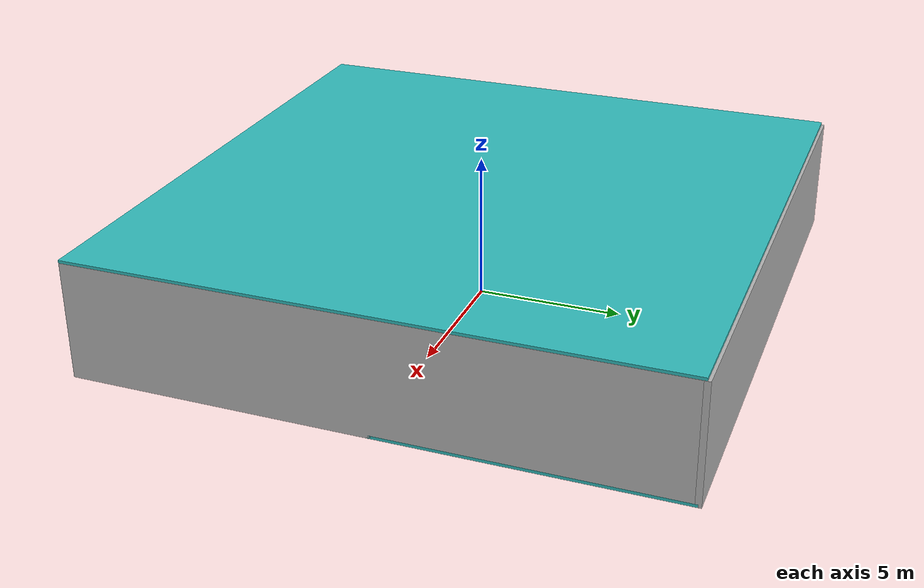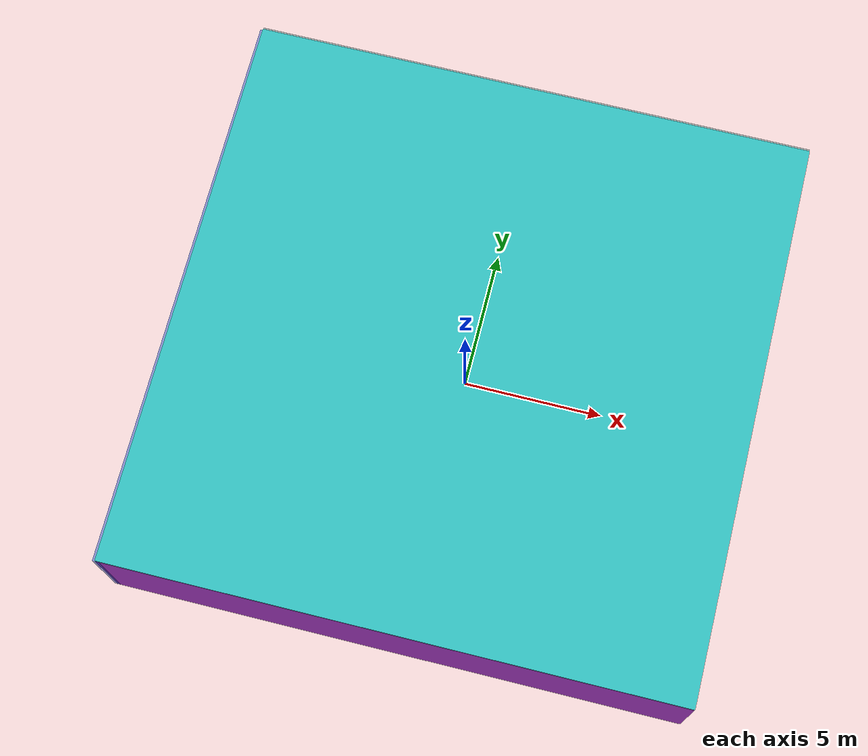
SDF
<sdf version="1.4">
 <world name="default">
  <physics type="ode">
   <max_step_size>0.001</max_step_size>
   <real_time_factor>1</real_time_factor>
   <real_time_update_rate>1000</real_time_update_rate>
   <gravity>0 0 -9.8</gravity>
  </physics>
  <scene><ambient>0.4 0.4 0.4 1</ambient><background>0.7 0.7 0.7 1</background><shadows>1</shadows></scene>
  <model name="Surrounding">
   <static>1</static>
   <link name="Ceiling">
    <collision name="Ceiling_Collision"><geometry><box><size>20 20 0.1</size></box></geometry></collision>
    <visual name="Ceiling_Visual">
     <geometry><box><size>20 20 0.1</size></box></geometry>
     <material>
      <script><uri>file://media/materials/scripts/gazebo.material</uri><name>Gazebo/Turquoise</name></script>
     </material>
    </visual>
    <pose>0 0 4.05 0 0 0</pose>
   </link>
   <link name="Wall_South">
    <collision name="Wall_South_Collision">
     <geometry><box><size>20 0 4</size></box></geometry>
     <pose>0 0 2 0 -0 0</pose>
    </collision>
    <visual name="Wall_South_Visual">
     <pose>0 0 2 0 -0 0</pose>
     <geometry><box><size>20 0 4</size></box></geometry>
     <material>
      <script><uri>file://media/materials/scripts/gazebo.material</uri><name>Gazebo/PurpleGlow</name></script>
     </material>
    </visual>
    <velocity_decay><linear>0</linear><angular>0</angular></velocity_decay>
    <pose>0 -10 0 0 -0 0</pose>
   </link>
   <link name="Wall_East">
    <collision name="Wall_21_Collision">
     <geometry><box><size>20 0 4</size></box></geometry>
     <pose>0 0 2 0 -0 0</pose>
    </collision>
    <visual name="Wall_21_Visual">
     <pose>0 0 2 0 -0 0</pose>
     <geometry><box><size>20 0 4</size></box></geometry>
     <material>
      <script><uri>file://media/materials/scripts/gazebo.material</uri><name>Gazebo/CloudySky</name></script>
     </material>
    </visual>
    <velocity_decay><linear>0</linear><angular>0</angular></velocity_decay>
    <pose>10 0 0 0 -0 1.5708</pose>
   </link>
   <link name="Wall_North">
    <collision name="Wall_22_Collision">
     <geometry><box><size>20 0.2 4</size></box></geometry>
     <pose>0 0 2 0 -0 0</pose>
    </collision>
    <visual name="Wall_22_Visual">
     <pose>0 0 2 0 -0 0</pose>
     <geometry><box><size>20 0.2 4</size></box></geometry>
     <material>
      <script><uri>file://media/materials/scripts/gazebo.material</uri><name>Gazebo/LightOn</name></script>
     </material>
    </visual>
    <velocity_decay><linear>0</linear><angular>0</angular></velocity_decay>
    <pose>0 10 0 0 -0 0</pose>
   </link>
   <link name="Wall_West">
    <collision name="Wall_23_Collision">
     <geometry><box><size>20 0.2 4</size></box></geometry>
     <pose>0 0 2 0 -0 0</pose>
    </collision>
    <visual name="Wall_23_Visual">
     <pose>0 0 2 0 -0 0</pose>
     <geometry><box><size>20 0.2 4</size></box></geometry>
     <material>
      <script><uri>file://media/materials/scripts/gazebo.material</uri><name>Gazebo/BlueTransparent</name></script>
     </material>
    </visual>
    <velocity_decay><linear>0</linear><angular>0</angular></velocity_decay>
    <pose>-10 0 0 0 0 -1.5708</pose>
   </link>
   <link name="Ground_link">
    <collision name="collision">
     <pose>0 0 .05 0 -0 0</pose>
     <geometry><box><size>20 20 0.1</size></box></geometry>
    </collision>
    <visual name="visual">
     <pose>0 0 .05 0 -0 0</pose>
     <geometry><box><size>20 20 0.1</size></box></geometry>
     <material>
      <script><uri>file://media/materials/scripts/gazebo.material</uri><name>Gazebo/TurquoiseGlow</name></script>
     </material>
    </visual>
   </link>
   <static>1</static>
  </model>
  <spherical_coordinates>
   <surface_model>EARTH_WGS84</surface_model>
   <latitude_deg>0</latitude_deg>
   <longitude_deg>0</longitude_deg>
   <elevation>0</elevation>
   <heading_deg>0</heading_deg>
  </spherical_coordinates>
  <light name="lightball_0" type="diffuse">
   <diffuse>0.8 0.8 0.8 1</diffuse>
   <specular>0.2 0.2 0.2 1</specular>
   <attenuation>
    <range>100</range>
    <constant>0.7</constant>
    <linear>0.01</linear>
    <quadratic>0.001</quadratic>
   </attenuation>
   <direction>-0.5 0.1 -0.9</direction>
   <pose>-2.72245280677 -2.90726044003 0.829373339034 0 0 0</pose>
  </light>
  <light name="lightball_1" type="diffuse">
   <diffuse>0.8 0.8 0.8 1</diffuse>
   <specular>0.2 0.2 0.2 1</specular>
   <attenuation>
    <range>100</range>
    <constant>0.7</constant>
    <linear>0.01</linear>
    <quadratic>0.001</quadratic>
   </attenuation>
   <direction>-0.5 0.1 -0.9</direction>
   <pose>-7.33282318002 -5.45215493636 3.34605467975 0 0 0</pose>
  </light>
  <light name="lightball_2" type="diffuse">
   <diffuse>0.8 0.8 0.8 1</diffuse>
   <specular>0.2 0.2 0.2 1</specular>
   <attenuation>
    <range>100</range>
    <constant>0.7</constant>
    <linear>0.01</linear>
    <quadratic>0.001</quadratic>
   </attenuation>
   <direction>-0.5 0.1 -0.9</direction>
   <pose>-8.73074438185 -3.17933652694 1.15845383421 0 0 0</pose>
  </light>
  <light name="lightball_3" type="diffuse">
   <diffuse>0.8 0.8 0.8 1</diffuse>
   <specular>0.2 0.2 0.2 1</specular>
   <attenuation>
    <range>100</range>
    <constant>0.7</constant>
    <linear>0.01</linear>
    <quadratic>0.001</quadratic>
   </attenuation>
   <direction>-0.5 0.1 -0.9</direction>
   <pose>-0.227505678175 0.373058846721 2.31932551646 0 0 0</pose>
  </light>
  <light name="lightball_4" type="diffuse">
   <diffuse>0.8 0.8 0.8 1</diffuse>
   <specular>0.2 0.2 0.2 1</specular>
   <attenuation>
    <range>100</range>
    <constant>0.7</constant>
    <linear>0.01</linear>
    <quadratic>0.001</quadratic>
   </attenuation>
   <direction>-0.5 0.1 -0.9</direction>
   <pose>-5.95425984315 -0.519049971346 1.94264111763 0 0 0</pose>
  </light>
  <light name="lightball_5" type="diffuse">
   <diffuse>0.8 0.8 0.8 1</diffuse>
   <specular>0.2 0.2 0.2 1</specular>
   <attenuation>
    <range>100</range>
    <constant>0.7</constant>
    <linear>0.01</linear>
    <quadratic>0.001</quadratic>
   </attenuation>
   <direction>-0.5 0.1 -0.9</direction>
   <pose>4.96598577245 6.58925994435 0.649921619627 0 0 0</pose>
  </light>
  <light name="lightball_6" type="diffuse">
   <diffuse>0.8 0.8 0.8 1</diffuse>
   <specular>0.2 0.2 0.2 1</specular>
   <attenuation>
    <range>100</range>
    <constant>0.7</constant>
    <linear>0.01</linear>
    <quadratic>0.001</quadratic>
   </attenuation>
   <direction>-0.5 0.1 -0.9</direction>
   <pose>-6.47215672505 9.48821171873 1.04008844712 0 0 0</pose>
  </light>
  <light name="lightball_7" type="diffuse">
   <diffuse>0.8 0.8 0.8 1</diffuse>
   <specular>0.2 0.2 0.2 1</specular>
   <attenuation>
    <range>100</range>
    <constant>0.7</constant>
    <linear>0.01</linear>
    <quadratic>0.001</quadratic>
   </attenuation>
   <direction>-0.5 0.1 -0.9</direction>
   <pose>-4.59063309358 -7.48491333149 2.81754642566 0 0 0</pose>
  </light>
  <light name="lightball_8" type="diffuse">
   <diffuse>0.8 0.8 0.8 1</diffuse>
   <specular>0.2 0.2 0.2 1</specular>
   <attenuation>
    <range>100</range>
    <constant>0.7</constant>
    <linear>0.01</linear>
    <quadratic>0.001</quadratic>
   </attenuation>
   <direction>-0.5 0.1 -0.9</direction>
   <pose>-6.6578591813 1.64053589627 3.36528337979 0 0 0</pose>
  </light>
  <light name="lightball_9" type="diffuse">
   <diffuse>0.8 0.8 0.8 1</diffuse>
   <specular>0.2 0.2 0.2 1</specular>
   <attenuation>
    <range>100</range>
    <constant>0.7</constant>
    <linear>0.01</linear>
    <quadratic>0.001</quadratic>
   </attenuation>
   <direction>-0.5 0.1 -0.9</direction>
   <pose>5.23274680246 -2.8662922466 2.15760218673 0 0 0</pose>
  </light>
  <light name="lightball_10" type="diffuse">
   <diffuse>0.8 0.8 0.8 1</diffuse>
   <specular>0.2 0.2 0.2 1</specular>
   <attenuation>
    <range>100</range>
    <constant>0.7</constant>
    <linear>0.01</linear>
    <quadratic>0.001</quadratic>
   </attenuation>
   <direction>-0.5 0.1 -0.9</direction>
   <pose>-7.74857396825 -8.56124809198 2.19081181837 0 0 0</pose>
  </light>
  <light name="lightball_11" type="diffuse">
   <diffuse>0.8 0.8 0.8 1</diffuse>
   <specular>0.2 0.2 0.2 1</specular>
   <attenuation>
    <range>100</range>
    <constant>0.7</constant>
    <linear>0.01</linear>
    <quadratic>0.001</quadratic>
   </attenuation>
   <direction>-0.5 0.1 -0.9</direction>
   <pose>0.0557651960446 1.91708682197 3.12954085079 0 0 0</pose>
  </light>
  <light name="lightball_12" type="diffuse">
   <diffuse>0.8 0.8 0.8 1</diffuse>
   <specular>0.2 0.2 0.2 1</specular>
   <attenuation>
    <range>100</range>
    <constant>0.7</constant>
    <linear>0.01</linear>
    <quadratic>0.001</quadratic>
   </attenuation>
   <direction>-0.5 0.1 -0.9</direction>
   <pose>-5.77078730476 7.88552364077 2.48951352342 0 0 0</pose>
  </light>
  <light name="lightball_13" type="diffuse">
   <diffuse>0.8 0.8 0.8 1</diffuse>
   <specular>0.2 0.2 0.2 1</specular>
   <attenuation>
    <range>100</range>
    <constant>0.7</constant>
    <linear>0.01</linear>
    <quadratic>0.001</quadratic>
   </attenuation>
   <direction>-0.5 0.1 -0.9</direction>
   <pose>4.83620417851 -1.61873934078 2.32607127254 0 0 0</pose>
  </light>
  <include>
   <uri>model://construction_cone</uri>
   <pose>-7.96607581078 5.08271443928 0 0 0 1.63063136457</pose>
  </include>
  <include>
   <uri>model://construction_cone</uri>
   <pose>-3.68032191088 -3.93267722148 0 0 0 1.03141488364</pose>
  </include>
  <include>
   <uri>model://construction_cone</uri>
   <pose>-5.58053134516 1.09113349047 0 0 0 2.85482194056</pose>
  </include>
  <include>
   <uri>model://construction_cone</uri>
   <pose>0.557829894869 1.60582029343 0 0 0 2.37122559277</pose>
  </include>
 </world>
</sdf>

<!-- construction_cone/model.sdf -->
<sdf version="1.5">
  <model name="Construction Cone">
    <link name="link">
      <collision name="collision">
        <geometry>
          <mesh>
            <scale>10 10 10</scale>
            <uri>file://isr-testbed/construction_cone/meshes/construction_cone.dae</uri>
          </mesh>
        </geometry>
      </collision>
      <visual name="visual">
        <geometry>
          <mesh>
            <scale>10 10 10</scale>
            <uri>file://isr-testbed/construction_cone/meshes/construction_cone.dae</uri>
          </mesh>
        </geometry>
      </visual>
    </link>
  </model>
</sdf>
